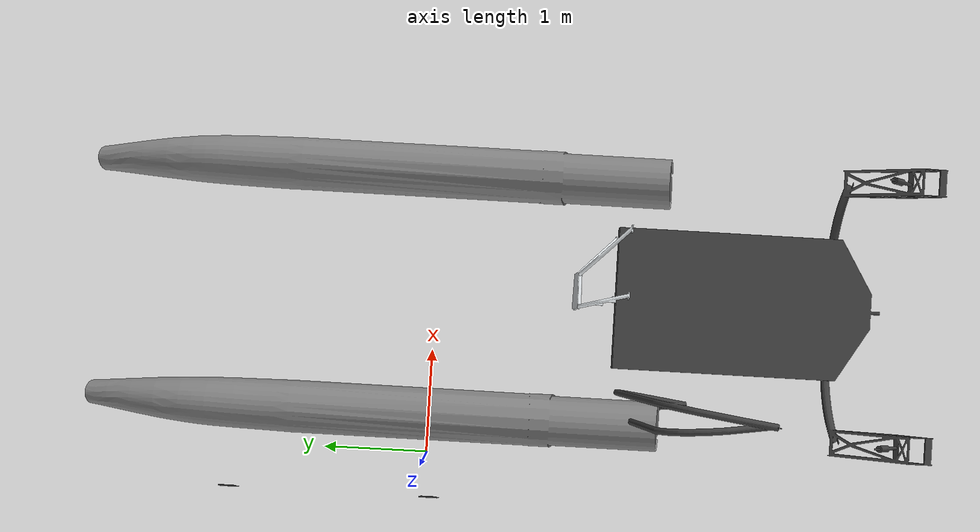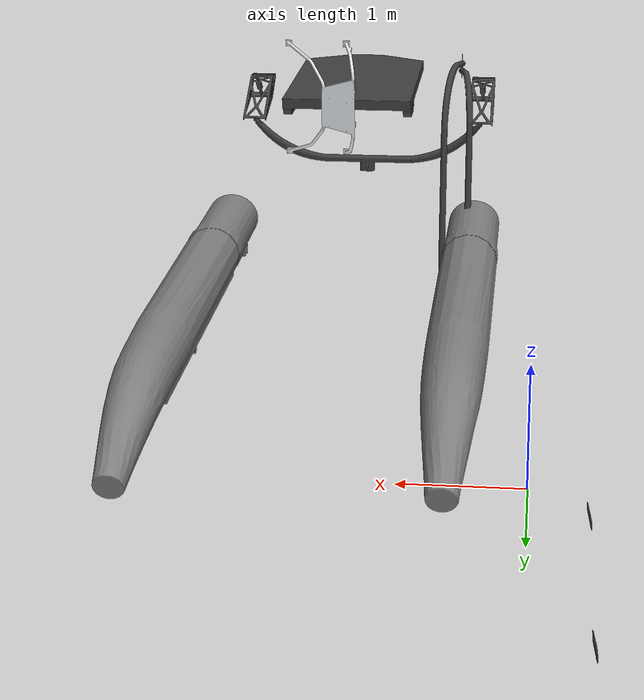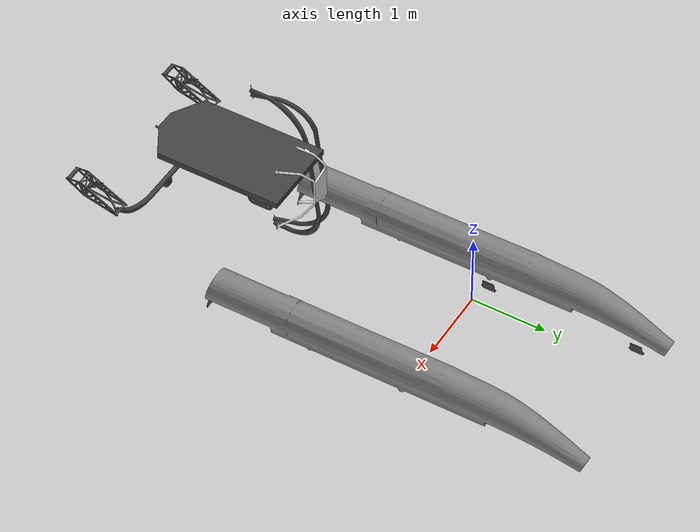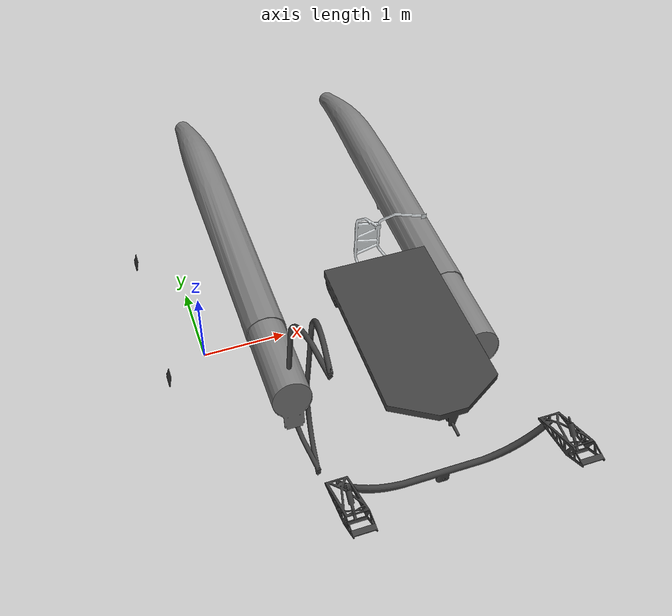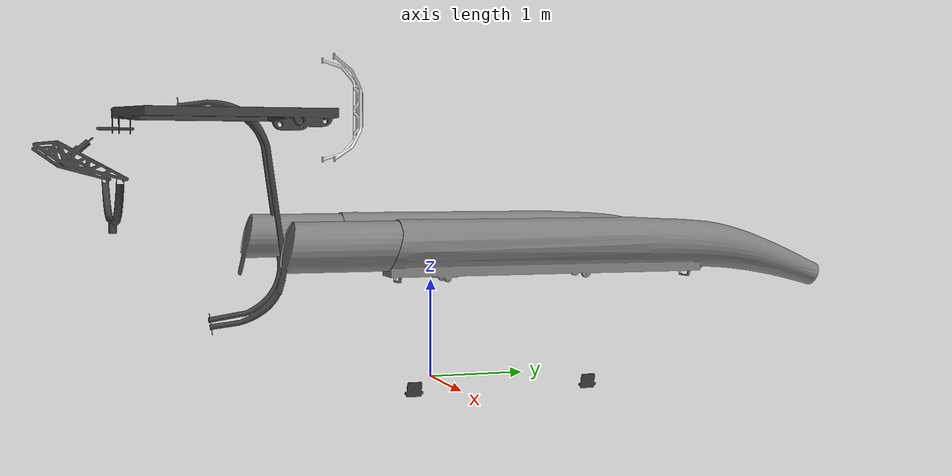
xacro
<robot
  name="WAM-V">
  <link
    name="Ship">
    <inertial>
      <origin
        xyz="1.51206787019308 1.78454626473221 0.280594889113911"
        rpy="0 0 0" />
      <mass
        value="0.343059128131347" />
      <inertia
        ixx="1.02541857941861E-31"
        ixy="-1.23259516440783E-32"
        ixz="-1.7250223049292E-16"
        iyy="0.347516126809007"
        iyz="3.01060216944785E-47"
        izz="0.347516126809007" />
    </inertial>
    <visual>
      <origin
        xyz="0 0 0"
        rpy="0 0 0" />
      <geometry>
        <mesh
          filename="package://WAM-V/meshes/Ship.STL" />
      </geometry>
      <material
        name="">
        <color
          rgba="0.250980392156863 0.250980392156863 0.250980392156863 1" />
      </material>
    </visual>
    <collision>
      <origin
        xyz="0 0 0"
        rpy="0 0 0" />
      <geometry>
        <mesh
          filename="package://WAM-V/meshes/Ship.STL" />
      </geometry>
    </collision>
  </link>
  <link
    name="port_pontoon">
    <inertial>
      <origin
        xyz="2.7149E-05 0.025063 0.96995"
        rpy="0 0 0" />
      <mass
        value="862.28" />
      <inertia
        ixx="919.07"
        ixy="9.5403E-05"
        ixz="-0.018323"
        iyy="917.35"
        iyz="-12.94"
        izz="1.7236" />
    </inertial>
    <visual>
      <origin
        xyz="0 0 0"
        rpy="0 0 0" />
      <geometry>
        <mesh
          filename="package://WAM-V/meshes/port_pontoon.STL" />
      </geometry>
      <material
        name="">
        <color
          rgba="0.50196 0.50196 0.50196 1" />
      </material>
    </visual>
    <collision>
      <origin
        xyz="0 0 0"
        rpy="0 0 0" />
      <geometry>
        <mesh
          filename="package://WAM-V/meshes/port_pontoon.STL" />
      </geometry>
    </collision>
  </link>
  <joint
    name="port_pontoon_link"
    type="fixed">
    <origin
      xyz="2.51854287019308 -1.1575284944847 1.50138062170411"
      rpy="1.5707963267949 0 0" />
    <parent
      link="Ship" />
    <child
      link="port_pontoon" />
    <axis
      xyz="0 0 0" />
  </joint>
  <link
    name="starboard_pontoon">
    <inertial>
      <origin
        xyz="2.7148E-05 0.025067 0.96992"
        rpy="0 0 0" />
      <mass
        value="862.3" />
      <inertia
        ixx="919.13"
        ixy="9.55E-05"
        ixz="-0.018324"
        iyy="917.4"
        iyz="-12.934"
        izz="1.7242" />
    </inertial>
    <visual>
      <origin
        xyz="0 0 0"
        rpy="0 0 0" />
      <geometry>
        <mesh
          filename="package://WAM-V/meshes/starboard_pontoon.STL" />
      </geometry>
      <material
        name="">
        <color
          rgba="0.50196 0.50196 0.50196 1" />
      </material>
    </visual>
    <collision>
      <origin
        xyz="0 0 0"
        rpy="0 0 0" />
      <geometry>
        <mesh
          filename="package://WAM-V/meshes/starboard_pontoon.STL" />
      </geometry>
    </collision>
  </link>
  <joint
    name="starboard_pontoon_link"
    type="fixed">
    <origin
      xyz="0.505592870193075 -1.1575284944847 1.50138062170411"
      rpy="1.5707963267949 0 0" />
    <parent
      link="Ship" />
    <child
      link="starboard_pontoon" />
    <axis
      xyz="0 0 0" />
  </joint>
  <link
    name="front_arm">
    <inertial>
      <origin
        xyz="1.035 0.1647 -0.056607"
        rpy="0 0 0" />
      <mass
        value="11.056" />
      <inertia
        ixx="0.69846"
        ixy="0.0042605"
        ixz="-0.0041643"
        iyy="3.2431"
        iyz="-0.32611"
        izz="3.4715" />
    </inertial>
    <visual>
      <origin
        xyz="0 0 0"
        rpy="0 0 0" />
      <geometry>
        <mesh
          filename="package://WAM-V/meshes/front_arm.STL" />
      </geometry>
      <material
        name="">
        <color
          rgba="0.25098 0.25098 0.25098 1" />
      </material>
    </visual>
    <collision>
      <origin
        xyz="0 0 0"
        rpy="0 0 0" />
      <geometry>
        <mesh
          filename="package://WAM-V/meshes/front_arm.STL" />
      </geometry>
    </collision>
  </link>
  <joint
    name="front_arm_link"
    type="fixed">
    <origin
      xyz="0.477017870193075 -3.3012884944847 2.04734366138336"
      rpy="1.5707963267949 0 0" />
    <parent
      link="Ship" />
    <child
      link="front_arm" />
    <axis
      xyz="0 0 0" />
  </joint>
  <link
    name="back_arm">
    <inertial>
      <origin
        xyz="1.0523 0.53236 -0.046184"
        rpy="0 0 0" />
      <mass
        value="13.904" />
      <inertia
        ixx="0.082566"
        ixy="-0.00023707"
        ixz="-0.0019543"
        iyy="0.090768"
        iyz="-0.0085546"
        izz="0.017971" />
    </inertial>
    <visual>
      <origin
        xyz="0 0 0"
        rpy="0 0 0" />
      <geometry>
        <mesh
          filename="package://WAM-V/meshes/back_arm.STL" />
      </geometry>
      <material
        name="">
        <color
          rgba="0.25098 0.25098 0.25098 1" />
      </material>
    </visual>
    <collision>
      <origin
        xyz="0 0 0"
        rpy="0 0 0" />
      <geometry>
        <mesh
          filename="package://WAM-V/meshes/back_arm.STL" />
      </geometry>
    </collision>
  </link>
  <joint
    name="back_arm_link"
    type="fixed">
    <origin
      xyz="0.461035796545679 -1.62938510772266 1.80487186338744"
      rpy="1.70680851480681 0 0" />
    <parent
      link="Ship" />
    <child
      link="back_arm" />
    <axis
      xyz="0 0 0" />
  </joint>
  <link
    name="platform">
    <inertial>
      <origin
        xyz="1.015 0.038366 -0.508"
        rpy="0 0 0" />
      <mass
        value="33.428" />
      <inertia
        ixx="0.0027338"
        ixy="-0.020382"
        ixz="1.4515E-09"
        iyy="0.15196"
        iyz="1.9469E-10"
        izz="0.15469" />
    </inertial>
    <visual>
      <origin
        xyz="0 0 0"
        rpy="0 0 0" />
      <geometry>
        <mesh
          filename="package://WAM-V/meshes/platform.STL" />
      </geometry>
      <material
        name="">
        <color
          rgba="0.25098 0.25098 0.25098 1" />
      </material>
    </visual>
    <collision>
      <origin
        xyz="0 0 0"
        rpy="0 0 0" />
      <geometry>
        <mesh
          filename="package://WAM-V/meshes/platform.STL" />
      </geometry>
    </collision>
  </link>
  <joint
    name="platform_link"
    type="fixed">
    <origin
      xyz="2.02006787019308 -3.2631884944847 2.55916499474097"
      rpy="1.5707963267949 6.12303176911189E-17 1.5707963267949" />
    <parent
      link="Ship" />
    <child
      link="platform" />
    <axis
      xyz="0 0 0" />
  </joint>
  <link
    name="owls_nest">
    <inertial>
      <origin
        xyz="7.7996E-05 0.24022 0.074068"
        rpy="0 0 0" />
      <mass
        value="3.138" />
      <inertia
        ixx="0.076997"
        ixy="7.1068E-06"
        ixz="-7.0107E-05"
        iyy="0.10637"
        iyz="0.014352"
        izz="0.069683" />
    </inertial>
    <visual>
      <origin
        xyz="0 0 0"
        rpy="0 0 0" />
      <geometry>
        <mesh
          filename="package://WAM-V/meshes/owls_nest.STL" />
      </geometry>
      <material
        name="">
        <color
          rgba="0.89804 0.91765 0.92941 1" />
      </material>
    </visual>
    <collision>
      <origin
        xyz="0 0 0"
        rpy="0 0 0" />
      <geometry>
        <mesh
          filename="package://WAM-V/meshes/owls_nest.STL" />
      </geometry>
    </collision>
  </link>
  <joint
    name="owls_nest_link"
    type="fixed">
    <origin
      xyz="1.51206787019308 -1.4597884944847 2.64488999474097"
      rpy="1.5707963267949 0 0" />
    <parent
      link="Ship" />
    <child
      link="owls_nest" />
    <axis
      xyz="0 0 0" />
  </joint>
</robot>
